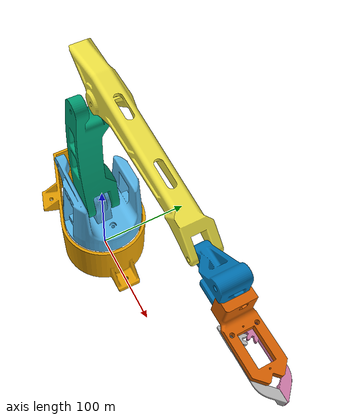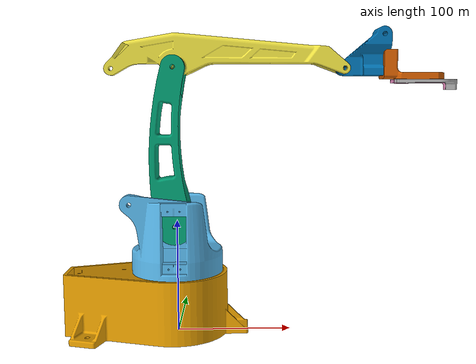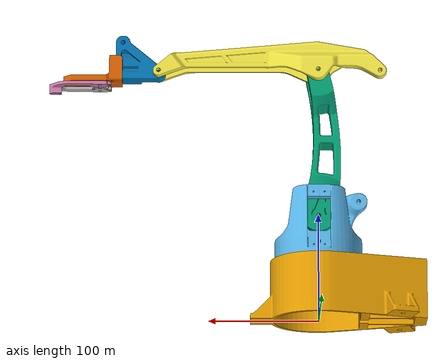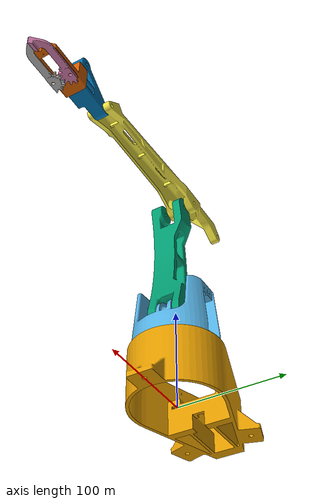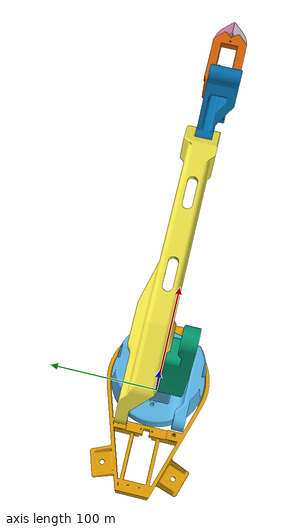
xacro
<?xml version="1.0"?>
<robot name="my_3dof_arm">

  <!--         LINKS         -->

  <!-- Base -->
  <link name="base_link">
    <visual>
      <geometry>
        <mesh filename="package://my_arm_description/meshes/base_link.stl" scale="1 1 1"/>
      </geometry>
    </visual>
  </link>

  <!-- Rotating base (yaw) -->
  <link name="rotating_base">
    <visual>
      <geometry>
        <mesh filename="package://my_arm_description/meshes/rotating_base.stl" scale="1 1 1"/>
      </geometry>
    </visual>
  </link>

  <!-- Upper arm -->
  <link name="upper_arm_link">
    <visual>
      <geometry>
        <mesh filename="package://my_arm_description/meshes/upper_arm_link.stl" scale="1 1 1"/>
      </geometry>
    </visual>
  </link>

  <!-- Forearm -->
  <link name="forearm_link">
    <visual>
      <geometry>
        <mesh filename="package://my_arm_description/meshes/forearm_link.stl" scale="1 1 1"/>
      </geometry>
    </visual>
  </link>

  <!-- Trialinkfront (009), coupler between forearm and wrist -->
  <link name="trialinkfront">
    <visual>
      <geometry>
        <mesh filename="package://my_arm_description/meshes/trialinkfront.stl" scale="1 1 1"/>
      </geometry>
    </visual>
  </link>

  <!-- Wrist/palm combo -->
  <link name="wrist_link">
    <visual>
      <geometry>
        <mesh filename="package://my_arm_description/meshes/wrist_link.stl" scale="1 1 1"/>
      </geometry>
    </visual>
  </link>

  <!-- Gripper fingers -->
  <link name="left_finger">
    <visual>
      <geometry>
        <mesh filename="package://my_arm_description/meshes/left_finger.stl" scale="1 1 1"/>
      </geometry>
    </visual>
  </link>

  <link name="right_finger">
    <visual>
      <geometry>
        <mesh filename="package://my_arm_description/meshes/right_finger.stl" scale="1 1 1"/>
      </geometry>
    </visual>
  </link>

  <!--         JOINTS        -->

  <!-- Joint 1: Yaw -->
  <joint name="joint1_yaw" type="revolute">
    <parent link="base_link"/>
    <child link="rotating_base"/>
    <origin xyz="0 0 55" rpy="0 0 -1.5708"/>
    <axis xyz="0 0 1"/>
    <limit lower="-3.14" upper="3.14" effort="10" velocity="1"/>
  </joint>

  <!-- Joint 2: Shoulder pitch -->
  <joint name="joint2_shoulder" type="revolute">
    <parent link="rotating_base"/>
    <child link="upper_arm_link"/>
    <origin xyz="4.73922 -0.319788 43" rpy="0 0 1.5708"/>
    <axis xyz="0 1 0"/>
    <limit lower="-1.57" upper="1.57" effort="10" velocity="1"/>
  </joint>

  <!-- Joint 3: Elbow pitch -->
  <joint name="joint3_elbow" type="revolute">
    <parent link="upper_arm_link"/>
    <child link="forearm_link"/>
    <origin xyz="0 15.25 135" rpy="0 0 0"/>
    <axis xyz="0 1 0"/>
    <limit lower="-2.0" upper="2.0" effort="10" velocity="1"/>
  </joint>

  <!-- Joint: forearm to trialinkfront (009 coupler) – now fixed -->
  <joint name="joint_trialinkfront" type="fixed">
    <parent link="forearm_link"/>
    <child link="trialinkfront"/>
    <origin xyz="186.34497 2 -6.222006" rpy="0 0 1.5708"/>
  </joint>

  <!-- Wrist fixed to trialinkfront -->
  <joint name="joint4_wrist_fixed" type="fixed">
    <parent link="trialinkfront"/>
    <child link="wrist_link"/>
    <origin xyz="-8.7 -6.020705 -2.907509" rpy="0 0 -1.5708"/>
  </joint>

  <!-- Gripper: actuated finger -->
  <joint name="left_finger_joint" type="revolute">
    <parent link="wrist_link"/>
    <child link="left_finger"/>
    <origin xyz="8.52312 9.05 -3.23983" rpy="-1.5708 0 0"/>
    <axis xyz="0 1 0"/>
    <limit lower="-0.78539816339" upper="0" effort="3" velocity="1"/>
  </joint>

  <!-- Gripper: mimic finger -->
  <joint name="right_finger_joint" type="revolute">
    <parent link="wrist_link"/>
    <child link="right_finger"/>
    <origin xyz="8.52312 -9.05 -0.239902" rpy="1.5708 0 0"/>
    <axis xyz="0 1 0"/>
    <mimic joint="left_finger_joint" multiplier="1.0" offset="0.0"/>
    <limit lower="0" upper="0.78539816339" effort="3" velocity="1"/>
  </joint>

</robot>
